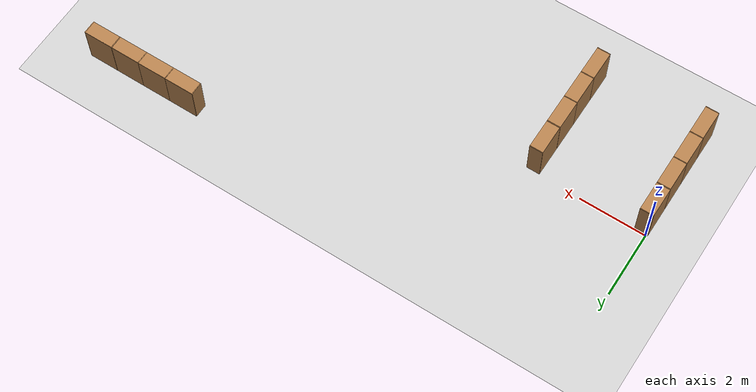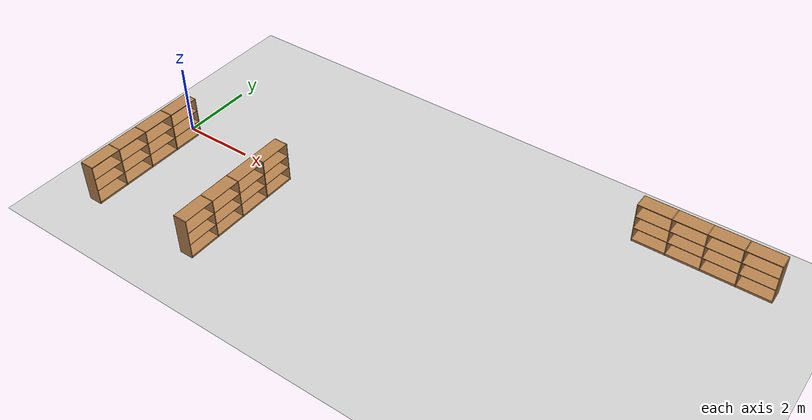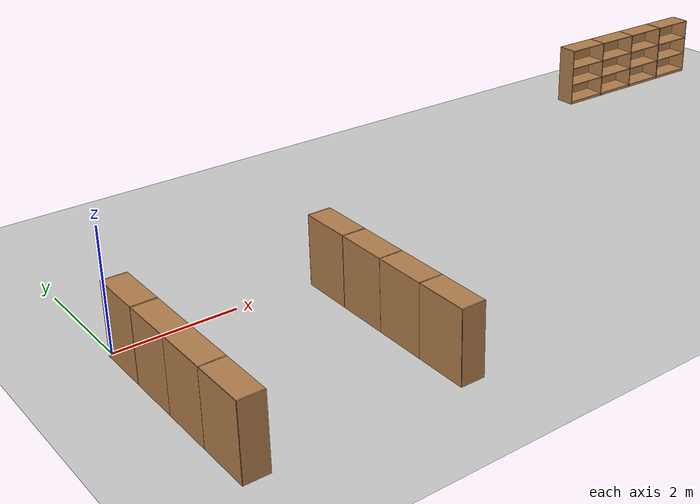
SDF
<sdf version="1.6">
 <world name="default">
  <model name="ground_plane">
   <static>1</static>
   <link name="link">
    <collision name="collision">
     <geometry><plane><normal>0 0 1</normal><size>100 100</size></plane></geometry>
     <surface><friction><ode><mu>100</mu><mu2>50</mu2></ode></friction></surface>
    </collision>
    <visual name="visual">
     <cast_shadows>0</cast_shadows>
     <geometry><plane><normal>0 0 1</normal><size>100 100</size></plane></geometry>
     <material>
      <script><uri>file://media/materials/scripts/gazebo.material</uri><name>Gazebo/Grey</name></script>
     </material>
    </visual>
   </link>
  </model>
  <model name="Bookself-4_clone_13">
   <model name="Bookself-3">
    <model name="bookshelf_0">
     <static>1</static>
     <link name="link">
      <inertial><mass>1</mass></inertial>
      <collision name="back">
       <pose>0 0.005 0.6 0 -0 0</pose>
       <geometry><box><size>0.9 0.01 1.2</size></box></geometry>
      </collision>
      <visual name="visual1">
       <pose>0 0.005 0.6 0 -0 0</pose>
       <geometry><box><size>0.9 0.01 1.2</size></box></geometry>
       <material>
        <script><uri>file://media/materials/scripts/gazebo.material</uri><name>Gazebo/Wood</name></script>
       </material>
      </visual>
      <collision name="left_side">
       <pose>0.45 -0.195 0.6 0 -0 0</pose>
       <geometry><box><size>0.02 0.4 1.2</size></box></geometry>
      </collision>
      <visual name="visual2">
       <pose>0.45 -0.195 0.6 0 -0 0</pose>
       <geometry><box><size>0.02 0.4 1.2</size></box></geometry>
       <material>
        <script><uri>file://media/materials/scripts/gazebo.material</uri><name>Gazebo/Wood</name></script>
       </material>
      </visual>
      <collision name="right_side">
       <pose>-0.45 -0.195 0.6 0 -0 0</pose>
       <geometry><box><size>0.02 0.4 1.2</size></box></geometry>
      </collision>
      <visual name="visual3">
       <pose>-0.45 -0.195 0.6 0 -0 0</pose>
       <geometry><box><size>0.02 0.4 1.2</size></box></geometry>
       <material>
        <script><uri>file://media/materials/scripts/gazebo.material</uri><name>Gazebo/Wood</name></script>
       </material>
      </visual>
      <collision name="bottom">
       <pose>0 -0.195 0.03 0 -0 0</pose>
       <geometry><box><size>0.88 0.4 0.06</size></box></geometry>
      </collision>
      <visual name="visual4">
       <pose>0 -0.195 0.03 0 -0 0</pose>
       <geometry><box><size>0.88 0.4 0.06</size></box></geometry>
       <material>
        <script><uri>file://media/materials/scripts/gazebo.material</uri><name>Gazebo/Wood</name></script>
       </material>
      </visual>
      <collision name="top">
       <pose>0 -0.195 1.19 0 -0 0</pose>
       <geometry><box><size>0.88 0.4 0.02</size></box></geometry>
      </collision>
      <visual name="visual5">
       <pose>0 -0.195 1.19 0 -0 0</pose>
       <geometry><box><size>0.88 0.4 0.02</size></box></geometry>
       <material>
        <script><uri>file://media/materials/scripts/gazebo.material</uri><name>Gazebo/Wood</name></script>
       </material>
      </visual>
      <collision name="low_shelf">
       <pose>0 -0.195 0.43 0 -0 0</pose>
       <geometry><box><size>0.88 0.4 0.02</size></box></geometry>
      </collision>
      <visual name="visual6">
       <pose>0 -0.195 0.43 0 -0 0</pose>
       <geometry><box><size>0.88 0.4 0.02</size></box></geometry>
       <material>
        <script><uri>file://media/materials/scripts/gazebo.material</uri><name>Gazebo/Wood</name></script>
       </material>
      </visual>
      <collision name="high_shelf">
       <pose>0 -0.195 0.8 0 -0 0</pose>
       <geometry><box><size>0.88 0.4 0.02</size></box></geometry>
      </collision>
      <visual name="visual7">
       <pose>0 -0.195 0.8 0 -0 0</pose>
       <geometry><box><size>0.88 0.4 0.02</size></box></geometry>
       <material>
        <script><uri>file://media/materials/scripts/gazebo.material</uri><name>Gazebo/Wood</name></script>
       </material>
      </visual>
     </link>
     <pose>-0.903039 0 0 0 -0 0</pose>
    </model>
    <model name="bookshelf_1">
     <static>1</static>
     <link name="link">
      <inertial><mass>1</mass></inertial>
      <collision name="back">
       <pose>0 0.005 0.6 0 -0 0</pose>
       <geometry><box><size>0.9 0.01 1.2</size></box></geometry>
      </collision>
      <visual name="visual1">
       <pose>0 0.005 0.6 0 -0 0</pose>
       <geometry><box><size>0.9 0.01 1.2</size></box></geometry>
       <material>
        <script><uri>file://media/materials/scripts/gazebo.material</uri><name>Gazebo/Wood</name></script>
       </material>
      </visual>
      <collision name="left_side">
       <pose>0.45 -0.195 0.6 0 -0 0</pose>
       <geometry><box><size>0.02 0.4 1.2</size></box></geometry>
      </collision>
      <visual name="visual2">
       <pose>0.45 -0.195 0.6 0 -0 0</pose>
       <geometry><box><size>0.02 0.4 1.2</size></box></geometry>
       <material>
        <script><uri>file://media/materials/scripts/gazebo.material</uri><name>Gazebo/Wood</name></script>
       </material>
      </visual>
      <collision name="right_side">
       <pose>-0.45 -0.195 0.6 0 -0 0</pose>
       <geometry><box><size>0.02 0.4 1.2</size></box></geometry>
      </collision>
      <visual name="visual3">
       <pose>-0.45 -0.195 0.6 0 -0 0</pose>
       <geometry><box><size>0.02 0.4 1.2</size></box></geometry>
       <material>
        <script><uri>file://media/materials/scripts/gazebo.material</uri><name>Gazebo/Wood</name></script>
       </material>
      </visual>
      <collision name="bottom">
       <pose>0 -0.195 0.03 0 -0 0</pose>
       <geometry><box><size>0.88 0.4 0.06</size></box></geometry>
      </collision>
      <visual name="visual4">
       <pose>0 -0.195 0.03 0 -0 0</pose>
       <geometry><box><size>0.88 0.4 0.06</size></box></geometry>
       <material>
        <script><uri>file://media/materials/scripts/gazebo.material</uri><name>Gazebo/Wood</name></script>
       </material>
      </visual>
      <collision name="top">
       <pose>0 -0.195 1.19 0 -0 0</pose>
       <geometry><box><size>0.88 0.4 0.02</size></box></geometry>
      </collision>
      <visual name="visual5">
       <pose>0 -0.195 1.19 0 -0 0</pose>
       <geometry><box><size>0.88 0.4 0.02</size></box></geometry>
       <material>
        <script><uri>file://media/materials/scripts/gazebo.material</uri><name>Gazebo/Wood</name></script>
       </material>
      </visual>
      <collision name="low_shelf">
       <pose>0 -0.195 0.43 0 -0 0</pose>
       <geometry><box><size>0.88 0.4 0.02</size></box></geometry>
      </collision>
      <visual name="visual6">
       <pose>0 -0.195 0.43 0 -0 0</pose>
       <geometry><box><size>0.88 0.4 0.02</size></box></geometry>
       <material>
        <script><uri>file://media/materials/scripts/gazebo.material</uri><name>Gazebo/Wood</name></script>
       </material>
      </visual>
      <collision name="high_shelf">
       <pose>0 -0.195 0.8 0 -0 0</pose>
       <geometry><box><size>0.88 0.4 0.02</size></box></geometry>
      </collision>
      <visual name="visual7">
       <pose>0 -0.195 0.8 0 -0 0</pose>
       <geometry><box><size>0.88 0.4 0.02</size></box></geometry>
       <material>
        <script><uri>file://media/materials/scripts/gazebo.material</uri><name>Gazebo/Wood</name></script>
       </material>
      </visual>
     </link>
     <pose>0.000535 0 0 0 -0 0</pose>
    </model>
    <model name="bookshelf_1_clone">
     <static>1</static>
     <link name="link">
      <inertial><mass>1</mass></inertial>
      <collision name="back">
       <pose>0 0.005 0.6 0 -0 0</pose>
       <geometry><box><size>0.9 0.01 1.2</size></box></geometry>
      </collision>
      <visual name="visual1">
       <pose>0 0.005 0.6 0 -0 0</pose>
       <geometry><box><size>0.9 0.01 1.2</size></box></geometry>
       <material>
        <script><uri>file://media/materials/scripts/gazebo.material</uri><name>Gazebo/Wood</name></script>
       </material>
      </visual>
      <collision name="left_side">
       <pose>0.45 -0.195 0.6 0 -0 0</pose>
       <geometry><box><size>0.02 0.4 1.2</size></box></geometry>
      </collision>
      <visual name="visual2">
       <pose>0.45 -0.195 0.6 0 -0 0</pose>
       <geometry><box><size>0.02 0.4 1.2</size></box></geometry>
       <material>
        <script><uri>file://media/materials/scripts/gazebo.material</uri><name>Gazebo/Wood</name></script>
       </material>
      </visual>
      <collision name="right_side">
       <pose>-0.45 -0.195 0.6 0 -0 0</pose>
       <geometry><box><size>0.02 0.4 1.2</size></box></geometry>
      </collision>
      <visual name="visual3">
       <pose>-0.45 -0.195 0.6 0 -0 0</pose>
       <geometry><box><size>0.02 0.4 1.2</size></box></geometry>
       <material>
        <script><uri>file://media/materials/scripts/gazebo.material</uri><name>Gazebo/Wood</name></script>
       </material>
      </visual>
      <collision name="bottom">
       <pose>0 -0.195 0.03 0 -0 0</pose>
       <geometry><box><size>0.88 0.4 0.06</size></box></geometry>
      </collision>
      <visual name="visual4">
       <pose>0 -0.195 0.03 0 -0 0</pose>
       <geometry><box><size>0.88 0.4 0.06</size></box></geometry>
       <material>
        <script><uri>file://media/materials/scripts/gazebo.material</uri><name>Gazebo/Wood</name></script>
       </material>
      </visual>
      <collision name="top">
       <pose>0 -0.195 1.19 0 -0 0</pose>
       <geometry><box><size>0.88 0.4 0.02</size></box></geometry>
      </collision>
      <visual name="visual5">
       <pose>0 -0.195 1.19 0 -0 0</pose>
       <geometry><box><size>0.88 0.4 0.02</size></box></geometry>
       <material>
        <script><uri>file://media/materials/scripts/gazebo.material</uri><name>Gazebo/Wood</name></script>
       </material>
      </visual>
      <collision name="low_shelf">
       <pose>0 -0.195 0.43 0 -0 0</pose>
       <geometry><box><size>0.88 0.4 0.02</size></box></geometry>
      </collision>
      <visual name="visual6">
       <pose>0 -0.195 0.43 0 -0 0</pose>
       <geometry><box><size>0.88 0.4 0.02</size></box></geometry>
       <material>
        <script><uri>file://media/materials/scripts/gazebo.material</uri><name>Gazebo/Wood</name></script>
       </material>
      </visual>
      <collision name="high_shelf">
       <pose>0 -0.195 0.8 0 -0 0</pose>
       <geometry><box><size>0.88 0.4 0.02</size></box></geometry>
      </collision>
      <visual name="visual7">
       <pose>0 -0.195 0.8 0 -0 0</pose>
       <geometry><box><size>0.88 0.4 0.02</size></box></geometry>
       <material>
        <script><uri>file://media/materials/scripts/gazebo.material</uri><name>Gazebo/Wood</name></script>
       </material>
      </visual>
     </link>
     <pose>0.902502 0 0 0 -0 0</pose>
    </model>
    <static>1</static>
    <pose>-0.906894 3e-05 0 0 -0 0</pose>
   </model>
   <model name="bookshelf">
    <static>1</static>
    <link name="link">
     <inertial><mass>1</mass></inertial>
     <collision name="back">
      <pose>0 0.005 0.6 0 -0 0</pose>
      <geometry><box><size>0.9 0.01 1.2</size></box></geometry>
     </collision>
     <visual name="visual1">
      <pose>0 0.005 0.6 0 -0 0</pose>
      <geometry><box><size>0.9 0.01 1.2</size></box></geometry>
      <material>
       <script><uri>file://media/materials/scripts/gazebo.material</uri><name>Gazebo/Wood</name></script>
      </material>
     </visual>
     <collision name="left_side">
      <pose>0.45 -0.195 0.6 0 -0 0</pose>
      <geometry><box><size>0.02 0.4 1.2</size></box></geometry>
     </collision>
     <visual name="visual2">
      <pose>0.45 -0.195 0.6 0 -0 0</pose>
      <geometry><box><size>0.02 0.4 1.2</size></box></geometry>
      <material>
       <script><uri>file://media/materials/scripts/gazebo.material</uri><name>Gazebo/Wood</name></script>
      </material>
     </visual>
     <collision name="right_side">
      <pose>-0.45 -0.195 0.6 0 -0 0</pose>
      <geometry><box><size>0.02 0.4 1.2</size></box></geometry>
     </collision>
     <visual name="visual3">
      <pose>-0.45 -0.195 0.6 0 -0 0</pose>
      <geometry><box><size>0.02 0.4 1.2</size></box></geometry>
      <material>
       <script><uri>file://media/materials/scripts/gazebo.material</uri><name>Gazebo/Wood</name></script>
      </material>
     </visual>
     <collision name="bottom">
      <pose>0 -0.195 0.03 0 -0 0</pose>
      <geometry><box><size>0.88 0.4 0.06</size></box></geometry>
     </collision>
     <visual name="visual4">
      <pose>0 -0.195 0.03 0 -0 0</pose>
      <geometry><box><size>0.88 0.4 0.06</size></box></geometry>
      <material>
       <script><uri>file://media/materials/scripts/gazebo.material</uri><name>Gazebo/Wood</name></script>
      </material>
     </visual>
     <collision name="top">
      <pose>0 -0.195 1.19 0 -0 0</pose>
      <geometry><box><size>0.88 0.4 0.02</size></box></geometry>
     </collision>
     <visual name="visual5">
      <pose>0 -0.195 1.19 0 -0 0</pose>
      <geometry><box><size>0.88 0.4 0.02</size></box></geometry>
      <material>
       <script><uri>file://media/materials/scripts/gazebo.material</uri><name>Gazebo/Wood</name></script>
      </material>
     </visual>
     <collision name="low_shelf">
      <pose>0 -0.195 0.43 0 -0 0</pose>
      <geometry><box><size>0.88 0.4 0.02</size></box></geometry>
     </collision>
     <visual name="visual6">
      <pose>0 -0.195 0.43 0 -0 0</pose>
      <geometry><box><size>0.88 0.4 0.02</size></box></geometry>
      <material>
       <script><uri>file://media/materials/scripts/gazebo.material</uri><name>Gazebo/Wood</name></script>
      </material>
     </visual>
     <collision name="high_shelf">
      <pose>0 -0.195 0.8 0 -0 0</pose>
      <geometry><box><size>0.88 0.4 0.02</size></box></geometry>
     </collision>
     <visual name="visual7">
      <pose>0 -0.195 0.8 0 -0 0</pose>
      <geometry><box><size>0.88 0.4 0.02</size></box></geometry>
      <material>
       <script><uri>file://media/materials/scripts/gazebo.material</uri><name>Gazebo/Wood</name></script>
      </material>
     </visual>
    </link>
    <pose>0.906808 3e-05 0 0 -0 0</pose>
   </model>
   <static>0</static>
   <pose>14.3718 3.49075 0 0 -0 0</pose>
  </model>
  <model name="Bookself-4_clone_14_clone_6">
   <model name="Bookself-3">
    <model name="bookshelf_0">
     <static>1</static>
     <link name="link">
      <inertial><mass>1</mass></inertial>
      <collision name="back">
       <pose>0 0.005 0.6 0 -0 0</pose>
       <geometry><box><size>0.9 0.01 1.2</size></box></geometry>
      </collision>
      <visual name="visual1">
       <pose>0 0.005 0.6 0 -0 0</pose>
       <geometry><box><size>0.9 0.01 1.2</size></box></geometry>
       <material>
        <script><uri>file://media/materials/scripts/gazebo.material</uri><name>Gazebo/Wood</name></script>
       </material>
      </visual>
      <collision name="left_side">
       <pose>0.45 -0.195 0.6 0 -0 0</pose>
       <geometry><box><size>0.02 0.4 1.2</size></box></geometry>
      </collision>
      <visual name="visual2">
       <pose>0.45 -0.195 0.6 0 -0 0</pose>
       <geometry><box><size>0.02 0.4 1.2</size></box></geometry>
       <material>
        <script><uri>file://media/materials/scripts/gazebo.material</uri><name>Gazebo/Wood</name></script>
       </material>
      </visual>
      <collision name="right_side">
       <pose>-0.45 -0.195 0.6 0 -0 0</pose>
       <geometry><box><size>0.02 0.4 1.2</size></box></geometry>
      </collision>
      <visual name="visual3">
       <pose>-0.45 -0.195 0.6 0 -0 0</pose>
       <geometry><box><size>0.02 0.4 1.2</size></box></geometry>
       <material>
        <script><uri>file://media/materials/scripts/gazebo.material</uri><name>Gazebo/Wood</name></script>
       </material>
      </visual>
      <collision name="bottom">
       <pose>0 -0.195 0.03 0 -0 0</pose>
       <geometry><box><size>0.88 0.4 0.06</size></box></geometry>
      </collision>
      <visual name="visual4">
       <pose>0 -0.195 0.03 0 -0 0</pose>
       <geometry><box><size>0.88 0.4 0.06</size></box></geometry>
       <material>
        <script><uri>file://media/materials/scripts/gazebo.material</uri><name>Gazebo/Wood</name></script>
       </material>
      </visual>
      <collision name="top">
       <pose>0 -0.195 1.19 0 -0 0</pose>
       <geometry><box><size>0.88 0.4 0.02</size></box></geometry>
      </collision>
      <visual name="visual5">
       <pose>0 -0.195 1.19 0 -0 0</pose>
       <geometry><box><size>0.88 0.4 0.02</size></box></geometry>
       <material>
        <script><uri>file://media/materials/scripts/gazebo.material</uri><name>Gazebo/Wood</name></script>
       </material>
      </visual>
      <collision name="low_shelf">
       <pose>0 -0.195 0.43 0 -0 0</pose>
       <geometry><box><size>0.88 0.4 0.02</size></box></geometry>
      </collision>
      <visual name="visual6">
       <pose>0 -0.195 0.43 0 -0 0</pose>
       <geometry><box><size>0.88 0.4 0.02</size></box></geometry>
       <material>
        <script><uri>file://media/materials/scripts/gazebo.material</uri><name>Gazebo/Wood</name></script>
       </material>
      </visual>
      <collision name="high_shelf">
       <pose>0 -0.195 0.8 0 -0 0</pose>
       <geometry><box><size>0.88 0.4 0.02</size></box></geometry>
      </collision>
      <visual name="visual7">
       <pose>0 -0.195 0.8 0 -0 0</pose>
       <geometry><box><size>0.88 0.4 0.02</size></box></geometry>
       <material>
        <script><uri>file://media/materials/scripts/gazebo.material</uri><name>Gazebo/Wood</name></script>
       </material>
      </visual>
     </link>
     <pose>-0.903039 0 0 0 -0 0</pose>
    </model>
    <model name="bookshelf_1">
     <static>1</static>
     <link name="link">
      <inertial><mass>1</mass></inertial>
      <collision name="back">
       <pose>0 0.005 0.6 0 -0 0</pose>
       <geometry><box><size>0.9 0.01 1.2</size></box></geometry>
      </collision>
      <visual name="visual1">
       <pose>0 0.005 0.6 0 -0 0</pose>
       <geometry><box><size>0.9 0.01 1.2</size></box></geometry>
       <material>
        <script><uri>file://media/materials/scripts/gazebo.material</uri><name>Gazebo/Wood</name></script>
       </material>
      </visual>
      <collision name="left_side">
       <pose>0.45 -0.195 0.6 0 -0 0</pose>
       <geometry><box><size>0.02 0.4 1.2</size></box></geometry>
      </collision>
      <visual name="visual2">
       <pose>0.45 -0.195 0.6 0 -0 0</pose>
       <geometry><box><size>0.02 0.4 1.2</size></box></geometry>
       <material>
        <script><uri>file://media/materials/scripts/gazebo.material</uri><name>Gazebo/Wood</name></script>
       </material>
      </visual>
      <collision name="right_side">
       <pose>-0.45 -0.195 0.6 0 -0 0</pose>
       <geometry><box><size>0.02 0.4 1.2</size></box></geometry>
      </collision>
      <visual name="visual3">
       <pose>-0.45 -0.195 0.6 0 -0 0</pose>
       <geometry><box><size>0.02 0.4 1.2</size></box></geometry>
       <material>
        <script><uri>file://media/materials/scripts/gazebo.material</uri><name>Gazebo/Wood</name></script>
       </material>
      </visual>
      <collision name="bottom">
       <pose>0 -0.195 0.03 0 -0 0</pose>
       <geometry><box><size>0.88 0.4 0.06</size></box></geometry>
      </collision>
      <visual name="visual4">
       <pose>0 -0.195 0.03 0 -0 0</pose>
       <geometry><box><size>0.88 0.4 0.06</size></box></geometry>
       <material>
        <script><uri>file://media/materials/scripts/gazebo.material</uri><name>Gazebo/Wood</name></script>
       </material>
      </visual>
      <collision name="top">
       <pose>0 -0.195 1.19 0 -0 0</pose>
       <geometry><box><size>0.88 0.4 0.02</size></box></geometry>
      </collision>
      <visual name="visual5">
       <pose>0 -0.195 1.19 0 -0 0</pose>
       <geometry><box><size>0.88 0.4 0.02</size></box></geometry>
       <material>
        <script><uri>file://media/materials/scripts/gazebo.material</uri><name>Gazebo/Wood</name></script>
       </material>
      </visual>
      <collision name="low_shelf">
       <pose>0 -0.195 0.43 0 -0 0</pose>
       <geometry><box><size>0.88 0.4 0.02</size></box></geometry>
      </collision>
      <visual name="visual6">
       <pose>0 -0.195 0.43 0 -0 0</pose>
       <geometry><box><size>0.88 0.4 0.02</size></box></geometry>
       <material>
        <script><uri>file://media/materials/scripts/gazebo.material</uri><name>Gazebo/Wood</name></script>
       </material>
      </visual>
      <collision name="high_shelf">
       <pose>0 -0.195 0.8 0 -0 0</pose>
       <geometry><box><size>0.88 0.4 0.02</size></box></geometry>
      </collision>
      <visual name="visual7">
       <pose>0 -0.195 0.8 0 -0 0</pose>
       <geometry><box><size>0.88 0.4 0.02</size></box></geometry>
       <material>
        <script><uri>file://media/materials/scripts/gazebo.material</uri><name>Gazebo/Wood</name></script>
       </material>
      </visual>
     </link>
     <pose>0.000535 0 0 0 -0 0</pose>
    </model>
    <model name="bookshelf_1_clone">
     <static>1</static>
     <link name="link">
      <inertial><mass>1</mass></inertial>
      <collision name="back">
       <pose>0 0.005 0.6 0 -0 0</pose>
       <geometry><box><size>0.9 0.01 1.2</size></box></geometry>
      </collision>
      <visual name="visual1">
       <pose>0 0.005 0.6 0 -0 0</pose>
       <geometry><box><size>0.9 0.01 1.2</size></box></geometry>
       <material>
        <script><uri>file://media/materials/scripts/gazebo.material</uri><name>Gazebo/Wood</name></script>
       </material>
      </visual>
      <collision name="left_side">
       <pose>0.45 -0.195 0.6 0 -0 0</pose>
       <geometry><box><size>0.02 0.4 1.2</size></box></geometry>
      </collision>
      <visual name="visual2">
       <pose>0.45 -0.195 0.6 0 -0 0</pose>
       <geometry><box><size>0.02 0.4 1.2</size></box></geometry>
       <material>
        <script><uri>file://media/materials/scripts/gazebo.material</uri><name>Gazebo/Wood</name></script>
       </material>
      </visual>
      <collision name="right_side">
       <pose>-0.45 -0.195 0.6 0 -0 0</pose>
       <geometry><box><size>0.02 0.4 1.2</size></box></geometry>
      </collision>
      <visual name="visual3">
       <pose>-0.45 -0.195 0.6 0 -0 0</pose>
       <geometry><box><size>0.02 0.4 1.2</size></box></geometry>
       <material>
        <script><uri>file://media/materials/scripts/gazebo.material</uri><name>Gazebo/Wood</name></script>
       </material>
      </visual>
      <collision name="bottom">
       <pose>0 -0.195 0.03 0 -0 0</pose>
       <geometry><box><size>0.88 0.4 0.06</size></box></geometry>
      </collision>
      <visual name="visual4">
       <pose>0 -0.195 0.03 0 -0 0</pose>
       <geometry><box><size>0.88 0.4 0.06</size></box></geometry>
       <material>
        <script><uri>file://media/materials/scripts/gazebo.material</uri><name>Gazebo/Wood</name></script>
       </material>
      </visual>
      <collision name="top">
       <pose>0 -0.195 1.19 0 -0 0</pose>
       <geometry><box><size>0.88 0.4 0.02</size></box></geometry>
      </collision>
      <visual name="visual5">
       <pose>0 -0.195 1.19 0 -0 0</pose>
       <geometry><box><size>0.88 0.4 0.02</size></box></geometry>
       <material>
        <script><uri>file://media/materials/scripts/gazebo.material</uri><name>Gazebo/Wood</name></script>
       </material>
      </visual>
      <collision name="low_shelf">
       <pose>0 -0.195 0.43 0 -0 0</pose>
       <geometry><box><size>0.88 0.4 0.02</size></box></geometry>
      </collision>
      <visual name="visual6">
       <pose>0 -0.195 0.43 0 -0 0</pose>
       <geometry><box><size>0.88 0.4 0.02</size></box></geometry>
       <material>
        <script><uri>file://media/materials/scripts/gazebo.material</uri><name>Gazebo/Wood</name></script>
       </material>
      </visual>
      <collision name="high_shelf">
       <pose>0 -0.195 0.8 0 -0 0</pose>
       <geometry><box><size>0.88 0.4 0.02</size></box></geometry>
      </collision>
      <visual name="visual7">
       <pose>0 -0.195 0.8 0 -0 0</pose>
       <geometry><box><size>0.88 0.4 0.02</size></box></geometry>
       <material>
        <script><uri>file://media/materials/scripts/gazebo.material</uri><name>Gazebo/Wood</name></script>
       </material>
      </visual>
     </link>
     <pose>0.902502 0 0 0 -0 0</pose>
    </model>
    <static>1</static>
    <pose>-0.906894 3e-05 0 0 -0 0</pose>
   </model>
   <model name="bookshelf">
    <static>1</static>
    <link name="link">
     <inertial><mass>1</mass></inertial>
     <collision name="back">
      <pose>0 0.005 0.6 0 -0 0</pose>
      <geometry><box><size>0.9 0.01 1.2</size></box></geometry>
     </collision>
     <visual name="visual1">
      <pose>0 0.005 0.6 0 -0 0</pose>
      <geometry><box><size>0.9 0.01 1.2</size></box></geometry>
      <material>
       <script><uri>file://media/materials/scripts/gazebo.material</uri><name>Gazebo/Wood</name></script>
      </material>
     </visual>
     <collision name="left_side">
      <pose>0.45 -0.195 0.6 0 -0 0</pose>
      <geometry><box><size>0.02 0.4 1.2</size></box></geometry>
     </collision>
     <visual name="visual2">
      <pose>0.45 -0.195 0.6 0 -0 0</pose>
      <geometry><box><size>0.02 0.4 1.2</size></box></geometry>
      <material>
       <script><uri>file://media/materials/scripts/gazebo.material</uri><name>Gazebo/Wood</name></script>
      </material>
     </visual>
     <collision name="right_side">
      <pose>-0.45 -0.195 0.6 0 -0 0</pose>
      <geometry><box><size>0.02 0.4 1.2</size></box></geometry>
     </collision>
     <visual name="visual3">
      <pose>-0.45 -0.195 0.6 0 -0 0</pose>
      <geometry><box><size>0.02 0.4 1.2</size></box></geometry>
      <material>
       <script><uri>file://media/materials/scripts/gazebo.material</uri><name>Gazebo/Wood</name></script>
      </material>
     </visual>
     <collision name="bottom">
      <pose>0 -0.195 0.03 0 -0 0</pose>
      <geometry><box><size>0.88 0.4 0.06</size></box></geometry>
     </collision>
     <visual name="visual4">
      <pose>0 -0.195 0.03 0 -0 0</pose>
      <geometry><box><size>0.88 0.4 0.06</size></box></geometry>
      <material>
       <script><uri>file://media/materials/scripts/gazebo.material</uri><name>Gazebo/Wood</name></script>
      </material>
     </visual>
     <collision name="top">
      <pose>0 -0.195 1.19 0 -0 0</pose>
      <geometry><box><size>0.88 0.4 0.02</size></box></geometry>
     </collision>
     <visual name="visual5">
      <pose>0 -0.195 1.19 0 -0 0</pose>
      <geometry><box><size>0.88 0.4 0.02</size></box></geometry>
      <material>
       <script><uri>file://media/materials/scripts/gazebo.material</uri><name>Gazebo/Wood</name></script>
      </material>
     </visual>
     <collision name="low_shelf">
      <pose>0 -0.195 0.43 0 -0 0</pose>
      <geometry><box><size>0.88 0.4 0.02</size></box></geometry>
     </collision>
     <visual name="visual6">
      <pose>0 -0.195 0.43 0 -0 0</pose>
      <geometry><box><size>0.88 0.4 0.02</size></box></geometry>
      <material>
       <script><uri>file://media/materials/scripts/gazebo.material</uri><name>Gazebo/Wood</name></script>
      </material>
     </visual>
     <collision name="high_shelf">
      <pose>0 -0.195 0.8 0 -0 0</pose>
      <geometry><box><size>0.88 0.4 0.02</size></box></geometry>
     </collision>
     <visual name="visual7">
      <pose>0 -0.195 0.8 0 -0 0</pose>
      <geometry><box><size>0.88 0.4 0.02</size></box></geometry>
      <material>
       <script><uri>file://media/materials/scripts/gazebo.material</uri><name>Gazebo/Wood</name></script>
      </material>
     </visual>
    </link>
    <pose>0.906808 3e-05 0 0 -0 0</pose>
   </model>
   <static>0</static>
   <pose>3.29806 -1.4238 0 0 -0 1.5707</pose>
  </model>
  <model name="Bookself-4_clone_14_clone_8">
   <model name="Bookself-3">
    <model name="bookshelf_0">
     <static>1</static>
     <link name="link">
      <inertial><mass>1</mass></inertial>
      <collision name="back">
       <pose>0 0.005 0.6 0 -0 0</pose>
       <geometry><box><size>0.9 0.01 1.2</size></box></geometry>
      </collision>
      <visual name="visual1">
       <pose>0 0.005 0.6 0 -0 0</pose>
       <geometry><box><size>0.9 0.01 1.2</size></box></geometry>
       <material>
        <script><uri>file://media/materials/scripts/gazebo.material</uri><name>Gazebo/Wood</name></script>
       </material>
      </visual>
      <collision name="left_side">
       <pose>0.45 -0.195 0.6 0 -0 0</pose>
       <geometry><box><size>0.02 0.4 1.2</size></box></geometry>
      </collision>
      <visual name="visual2">
       <pose>0.45 -0.195 0.6 0 -0 0</pose>
       <geometry><box><size>0.02 0.4 1.2</size></box></geometry>
       <material>
        <script><uri>file://media/materials/scripts/gazebo.material</uri><name>Gazebo/Wood</name></script>
       </material>
      </visual>
      <collision name="right_side">
       <pose>-0.45 -0.195 0.6 0 -0 0</pose>
       <geometry><box><size>0.02 0.4 1.2</size></box></geometry>
      </collision>
      <visual name="visual3">
       <pose>-0.45 -0.195 0.6 0 -0 0</pose>
       <geometry><box><size>0.02 0.4 1.2</size></box></geometry>
       <material>
        <script><uri>file://media/materials/scripts/gazebo.material</uri><name>Gazebo/Wood</name></script>
       </material>
      </visual>
      <collision name="bottom">
       <pose>0 -0.195 0.03 0 -0 0</pose>
       <geometry><box><size>0.88 0.4 0.06</size></box></geometry>
      </collision>
      <visual name="visual4">
       <pose>0 -0.195 0.03 0 -0 0</pose>
       <geometry><box><size>0.88 0.4 0.06</size></box></geometry>
       <material>
        <script><uri>file://media/materials/scripts/gazebo.material</uri><name>Gazebo/Wood</name></script>
       </material>
      </visual>
      <collision name="top">
       <pose>0 -0.195 1.19 0 -0 0</pose>
       <geometry><box><size>0.88 0.4 0.02</size></box></geometry>
      </collision>
      <visual name="visual5">
       <pose>0 -0.195 1.19 0 -0 0</pose>
       <geometry><box><size>0.88 0.4 0.02</size></box></geometry>
       <material>
        <script><uri>file://media/materials/scripts/gazebo.material</uri><name>Gazebo/Wood</name></script>
       </material>
      </visual>
      <collision name="low_shelf">
       <pose>0 -0.195 0.43 0 -0 0</pose>
       <geometry><box><size>0.88 0.4 0.02</size></box></geometry>
      </collision>
      <visual name="visual6">
       <pose>0 -0.195 0.43 0 -0 0</pose>
       <geometry><box><size>0.88 0.4 0.02</size></box></geometry>
       <material>
        <script><uri>file://media/materials/scripts/gazebo.material</uri><name>Gazebo/Wood</name></script>
       </material>
      </visual>
      <collision name="high_shelf">
       <pose>0 -0.195 0.8 0 -0 0</pose>
       <geometry><box><size>0.88 0.4 0.02</size></box></geometry>
      </collision>
      <visual name="visual7">
       <pose>0 -0.195 0.8 0 -0 0</pose>
       <geometry><box><size>0.88 0.4 0.02</size></box></geometry>
       <material>
        <script><uri>file://media/materials/scripts/gazebo.material</uri><name>Gazebo/Wood</name></script>
       </material>
      </visual>
     </link>
     <pose>-0.903039 0 0 0 -0 0</pose>
    </model>
    <model name="bookshelf_1">
     <static>1</static>
     <link name="link">
      <inertial><mass>1</mass></inertial>
      <collision name="back">
       <pose>0 0.005 0.6 0 -0 0</pose>
       <geometry><box><size>0.9 0.01 1.2</size></box></geometry>
      </collision>
      <visual name="visual1">
       <pose>0 0.005 0.6 0 -0 0</pose>
       <geometry><box><size>0.9 0.01 1.2</size></box></geometry>
       <material>
        <script><uri>file://media/materials/scripts/gazebo.material</uri><name>Gazebo/Wood</name></script>
       </material>
      </visual>
      <collision name="left_side">
       <pose>0.45 -0.195 0.6 0 -0 0</pose>
       <geometry><box><size>0.02 0.4 1.2</size></box></geometry>
      </collision>
      <visual name="visual2">
       <pose>0.45 -0.195 0.6 0 -0 0</pose>
       <geometry><box><size>0.02 0.4 1.2</size></box></geometry>
       <material>
        <script><uri>file://media/materials/scripts/gazebo.material</uri><name>Gazebo/Wood</name></script>
       </material>
      </visual>
      <collision name="right_side">
       <pose>-0.45 -0.195 0.6 0 -0 0</pose>
       <geometry><box><size>0.02 0.4 1.2</size></box></geometry>
      </collision>
      <visual name="visual3">
       <pose>-0.45 -0.195 0.6 0 -0 0</pose>
       <geometry><box><size>0.02 0.4 1.2</size></box></geometry>
       <material>
        <script><uri>file://media/materials/scripts/gazebo.material</uri><name>Gazebo/Wood</name></script>
       </material>
      </visual>
      <collision name="bottom">
       <pose>0 -0.195 0.03 0 -0 0</pose>
       <geometry><box><size>0.88 0.4 0.06</size></box></geometry>
      </collision>
      <visual name="visual4">
       <pose>0 -0.195 0.03 0 -0 0</pose>
       <geometry><box><size>0.88 0.4 0.06</size></box></geometry>
       <material>
        <script><uri>file://media/materials/scripts/gazebo.material</uri><name>Gazebo/Wood</name></script>
       </material>
      </visual>
      <collision name="top">
       <pose>0 -0.195 1.19 0 -0 0</pose>
       <geometry><box><size>0.88 0.4 0.02</size></box></geometry>
      </collision>
      <visual name="visual5">
       <pose>0 -0.195 1.19 0 -0 0</pose>
       <geometry><box><size>0.88 0.4 0.02</size></box></geometry>
       <material>
        <script><uri>file://media/materials/scripts/gazebo.material</uri><name>Gazebo/Wood</name></script>
       </material>
      </visual>
      <collision name="low_shelf">
       <pose>0 -0.195 0.43 0 -0 0</pose>
       <geometry><box><size>0.88 0.4 0.02</size></box></geometry>
      </collision>
      <visual name="visual6">
       <pose>0 -0.195 0.43 0 -0 0</pose>
       <geometry><box><size>0.88 0.4 0.02</size></box></geometry>
       <material>
        <script><uri>file://media/materials/scripts/gazebo.material</uri><name>Gazebo/Wood</name></script>
       </material>
      </visual>
      <collision name="high_shelf">
       <pose>0 -0.195 0.8 0 -0 0</pose>
       <geometry><box><size>0.88 0.4 0.02</size></box></geometry>
      </collision>
      <visual name="visual7">
       <pose>0 -0.195 0.8 0 -0 0</pose>
       <geometry><box><size>0.88 0.4 0.02</size></box></geometry>
       <material>
        <script><uri>file://media/materials/scripts/gazebo.material</uri><name>Gazebo/Wood</name></script>
       </material>
      </visual>
     </link>
     <pose>0.000535 0 0 0 -0 0</pose>
    </model>
    <model name="bookshelf_1_clone">
     <static>1</static>
     <link name="link">
      <inertial><mass>1</mass></inertial>
      <collision name="back">
       <pose>0 0.005 0.6 0 -0 0</pose>
       <geometry><box><size>0.9 0.01 1.2</size></box></geometry>
      </collision>
      <visual name="visual1">
       <pose>0 0.005 0.6 0 -0 0</pose>
       <geometry><box><size>0.9 0.01 1.2</size></box></geometry>
       <material>
        <script><uri>file://media/materials/scripts/gazebo.material</uri><name>Gazebo/Wood</name></script>
       </material>
      </visual>
      <collision name="left_side">
       <pose>0.45 -0.195 0.6 0 -0 0</pose>
       <geometry><box><size>0.02 0.4 1.2</size></box></geometry>
      </collision>
      <visual name="visual2">
       <pose>0.45 -0.195 0.6 0 -0 0</pose>
       <geometry><box><size>0.02 0.4 1.2</size></box></geometry>
       <material>
        <script><uri>file://media/materials/scripts/gazebo.material</uri><name>Gazebo/Wood</name></script>
       </material>
      </visual>
      <collision name="right_side">
       <pose>-0.45 -0.195 0.6 0 -0 0</pose>
       <geometry><box><size>0.02 0.4 1.2</size></box></geometry>
      </collision>
      <visual name="visual3">
       <pose>-0.45 -0.195 0.6 0 -0 0</pose>
       <geometry><box><size>0.02 0.4 1.2</size></box></geometry>
       <material>
        <script><uri>file://media/materials/scripts/gazebo.material</uri><name>Gazebo/Wood</name></script>
       </material>
      </visual>
      <collision name="bottom">
       <pose>0 -0.195 0.03 0 -0 0</pose>
       <geometry><box><size>0.88 0.4 0.06</size></box></geometry>
      </collision>
      <visual name="visual4">
       <pose>0 -0.195 0.03 0 -0 0</pose>
       <geometry><box><size>0.88 0.4 0.06</size></box></geometry>
       <material>
        <script><uri>file://media/materials/scripts/gazebo.material</uri><name>Gazebo/Wood</name></script>
       </material>
      </visual>
      <collision name="top">
       <pose>0 -0.195 1.19 0 -0 0</pose>
       <geometry><box><size>0.88 0.4 0.02</size></box></geometry>
      </collision>
      <visual name="visual5">
       <pose>0 -0.195 1.19 0 -0 0</pose>
       <geometry><box><size>0.88 0.4 0.02</size></box></geometry>
       <material>
        <script><uri>file://media/materials/scripts/gazebo.material</uri><name>Gazebo/Wood</name></script>
       </material>
      </visual>
      <collision name="low_shelf">
       <pose>0 -0.195 0.43 0 -0 0</pose>
       <geometry><box><size>0.88 0.4 0.02</size></box></geometry>
      </collision>
      <visual name="visual6">
       <pose>0 -0.195 0.43 0 -0 0</pose>
       <geometry><box><size>0.88 0.4 0.02</size></box></geometry>
       <material>
        <script><uri>file://media/materials/scripts/gazebo.material</uri><name>Gazebo/Wood</name></script>
       </material>
      </visual>
      <collision name="high_shelf">
       <pose>0 -0.195 0.8 0 -0 0</pose>
       <geometry><box><size>0.88 0.4 0.02</size></box></geometry>
      </collision>
      <visual name="visual7">
       <pose>0 -0.195 0.8 0 -0 0</pose>
       <geometry><box><size>0.88 0.4 0.02</size></box></geometry>
       <material>
        <script><uri>file://media/materials/scripts/gazebo.material</uri><name>Gazebo/Wood</name></script>
       </material>
      </visual>
     </link>
     <pose>0.902502 0 0 0 -0 0</pose>
    </model>
    <static>1</static>
    <pose>-0.906894 3e-05 0 0 -0 0</pose>
   </model>
   <model name="bookshelf">
    <static>1</static>
    <link name="link">
     <inertial><mass>1</mass></inertial>
     <collision name="back">
      <pose>0 0.005 0.6 0 -0 0</pose>
      <geometry><box><size>0.9 0.01 1.2</size></box></geometry>
     </collision>
     <visual name="visual1">
      <pose>0 0.005 0.6 0 -0 0</pose>
      <geometry><box><size>0.9 0.01 1.2</size></box></geometry>
      <material>
       <script><uri>file://media/materials/scripts/gazebo.material</uri><name>Gazebo/Wood</name></script>
      </material>
     </visual>
     <collision name="left_side">
      <pose>0.45 -0.195 0.6 0 -0 0</pose>
      <geometry><box><size>0.02 0.4 1.2</size></box></geometry>
     </collision>
     <visual name="visual2">
      <pose>0.45 -0.195 0.6 0 -0 0</pose>
      <geometry><box><size>0.02 0.4 1.2</size></box></geometry>
      <material>
       <script><uri>file://media/materials/scripts/gazebo.material</uri><name>Gazebo/Wood</name></script>
      </material>
     </visual>
     <collision name="right_side">
      <pose>-0.45 -0.195 0.6 0 -0 0</pose>
      <geometry><box><size>0.02 0.4 1.2</size></box></geometry>
     </collision>
     <visual name="visual3">
      <pose>-0.45 -0.195 0.6 0 -0 0</pose>
      <geometry><box><size>0.02 0.4 1.2</size></box></geometry>
      <material>
       <script><uri>file://media/materials/scripts/gazebo.material</uri><name>Gazebo/Wood</name></script>
      </material>
     </visual>
     <collision name="bottom">
      <pose>0 -0.195 0.03 0 -0 0</pose>
      <geometry><box><size>0.88 0.4 0.06</size></box></geometry>
     </collision>
     <visual name="visual4">
      <pose>0 -0.195 0.03 0 -0 0</pose>
      <geometry><box><size>0.88 0.4 0.06</size></box></geometry>
      <material>
       <script><uri>file://media/materials/scripts/gazebo.material</uri><name>Gazebo/Wood</name></script>
      </material>
     </visual>
     <collision name="top">
      <pose>0 -0.195 1.19 0 -0 0</pose>
      <geometry><box><size>0.88 0.4 0.02</size></box></geometry>
     </collision>
     <visual name="visual5">
      <pose>0 -0.195 1.19 0 -0 0</pose>
      <geometry><box><size>0.88 0.4 0.02</size></box></geometry>
      <material>
       <script><uri>file://media/materials/scripts/gazebo.material</uri><name>Gazebo/Wood</name></script>
      </material>
     </visual>
     <collision name="low_shelf">
      <pose>0 -0.195 0.43 0 -0 0</pose>
      <geometry><box><size>0.88 0.4 0.02</size></box></geometry>
     </collision>
     <visual name="visual6">
      <pose>0 -0.195 0.43 0 -0 0</pose>
      <geometry><box><size>0.88 0.4 0.02</size></box></geometry>
      <material>
       <script><uri>file://media/materials/scripts/gazebo.material</uri><name>Gazebo/Wood</name></script>
      </material>
     </visual>
     <collision name="high_shelf">
      <pose>0 -0.195 0.8 0 -0 0</pose>
      <geometry><box><size>0.88 0.4 0.02</size></box></geometry>
     </collision>
     <visual name="visual7">
      <pose>0 -0.195 0.8 0 -0 0</pose>
      <geometry><box><size>0.88 0.4 0.02</size></box></geometry>
      <material>
       <script><uri>file://media/materials/scripts/gazebo.material</uri><name>Gazebo/Wood</name></script>
      </material>
     </visual>
    </link>
    <pose>0.906808 3e-05 0 0 -0 0</pose>
   </model>
   <static>0</static>
   <pose>-0.046226 -1.38508 0 0 -0 1.5707</pose>
  </model>
 </world>
</sdf>
